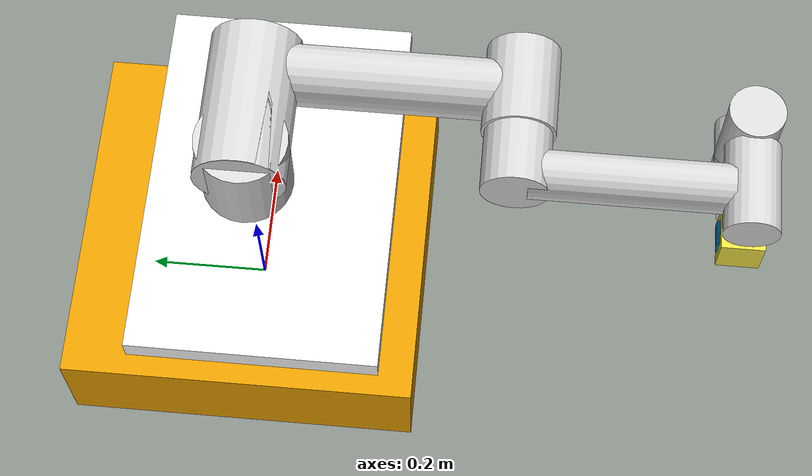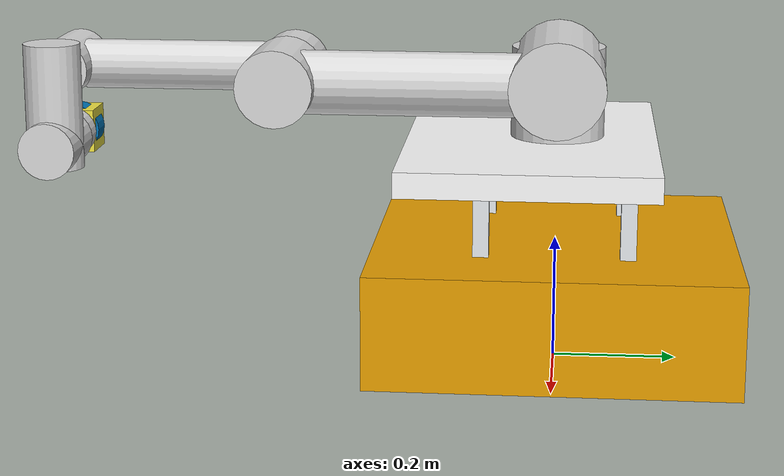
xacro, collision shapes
<?xml version="1.0" ?>
<robot name="tracer_jaka_zu5" xmlns:xacro="http://www.ros.org/wiki/xacro">

  <!-- xacro 参数：sim_mode 区分 Gazebo / 实机 -->
  <xacro:arg name="sim_mode" default="true"/>
  <xacro:arg name="prefix"   default=""/>

  <!-- 加载 ros2_control + gz_ros2_control 块 -->
  <xacro:include filename="$(find tracer_jaka_gazebo)/urdf/tracer_jaka.ros2_control.xacro"/>
  <xacro:include filename="$(find tracer_jaka_gazebo)/urdf/tracer_jaka.gazebo.xacro"/>

  <!-- ==================== 移动底盘部分 ==================== -->
  <link name="base_link">
    <visual>
      <origin rpy="1.57 0 0" xyz="0 0 0"/>
      <geometry>
        <mesh filename="package://tracer_jaka_gazebo/resources/tracer_description/meshes/tracer_base_link_no_wheel.dae"/>
      </geometry>
    </visual>
    <collision>
      <origin rpy="0 0 0" xyz="0 0 -0.02"/>
      <geometry>
        <box size="0.58 0.58 0.18"/>
      </geometry>
    </collision>
    <inertial>
      <!-- base_link 自身需要质量否则 Gazebo 会拒绝加载 -->
      <mass value="10.0"/>
      <origin xyz="0 0 0"/>
      <inertia ixx="0.01" ixy="0" ixz="0" iyy="0.01" iyz="0" izz="0.01"/>
    </inertial>
  </link>

  <link name="inertial_link">
    <inertial>
      <mass value="132.3898489950015"/>
      <origin xyz="0.015 0.0231316650320557 0"/>
      <inertia ixx="0.185196122711036" ixy="4.30144213829512E-08" ixz="5.81037523686401E-08"
               iyy="0.364893736238929"  iyz="-0.000386720198091934" izz="0.223868521722778"/>
    </inertial>
  </link>
  <joint name="inertial_joint" type="fixed">
    <origin rpy="0 0 0" xyz="0 0 0"/>
    <parent link="base_link"/>
    <child  link="inertial_link"/>
  </joint>

  <!-- =========== 驱动轮：CONTINUOUS（被 diff_drive_controller 控制） =========== -->
  <link name="right_wheel_link">
    <inertial>
      <mass value="6"/>
      <origin xyz="0 0 0"/>
      <inertia ixx="0.7171" ixy="0" ixz="0" iyy="0.1361" iyz="0" izz="0.7171"/>
    </inertial>
    <visual>
      <origin rpy="0 0 0" xyz="0 0 0"/>
      <geometry>
        <mesh filename="package://tracer_jaka_gazebo/resources/tracer_description/meshes/tracer_wheel.dae"/>
      </geometry>
    </visual>
    <collision>
      <origin rpy="1.5708 0 0" xyz="0 0 0"/>
      <geometry>
        <cylinder length="0.08" radius="0.065"/>
      </geometry>
    </collision>
  </link>
  <joint name="right_wheel" type="continuous">
    <parent link="base_link"/>
    <child  link="right_wheel_link"/>
    <origin rpy="0 0 0" xyz="0 -0.17 -0.082"/>
    <axis  xyz="0 1 0"/>
    <dynamics damping="0.05" friction="0.1"/>
    <limit effort="50" velocity="10"/>
  </joint>

  <link name="left_wheel_link">
    <inertial>
      <mass value="6"/>
      <origin xyz="0 0 0"/>
      <inertia ixx="0.7171" ixy="0" ixz="0" iyy="0.1361" iyz="0" izz="0.7171"/>
    </inertial>
    <visual>
      <origin rpy="0 0 0" xyz="0 0 0"/>
      <geometry>
        <mesh filename="package://tracer_jaka_gazebo/resources/tracer_description/meshes/tracer_wheel.dae"/>
      </geometry>
    </visual>
    <collision>
      <origin rpy="1.5708 0 0" xyz="0 0 0"/>
      <geometry>
        <cylinder length="0.08" radius="0.065"/>
      </geometry>
    </collision>
  </link>
  <joint name="left_wheel" type="continuous">
    <parent link="base_link"/>
    <child  link="left_wheel_link"/>
    <origin rpy="0 0 0" xyz="0 0.17 -0.082"/>
    <axis  xyz="0 1 0"/>
    <dynamics damping="0.05" friction="0.1"/>
    <limit effort="50" velocity="10"/>
  </joint>

  <!-- =========== 万向轮支架 + 轮：保持 fixed，靠低摩擦让小球滑动 =========== -->
  <xacro:macro name="castor" params="name xyz">
    <link name="${name}_castor_link">
      <inertial>
        <mass value="0.5"/>
        <origin xyz="0 0 0"/>
        <inertia ixx="1e-3" ixy="0" ixz="0" iyy="1e-3" iyz="0" izz="1e-3"/>
      </inertial>
      <visual>
        <geometry>
          <mesh filename="package://tracer_jaka_gazebo/resources/tracer_description/meshes/castor_joint.dae"/>
        </geometry>
      </visual>
      <collision>
        <origin rpy="0 0 0" xyz="0 0 0"/>
        <geometry><cylinder length="0.04" radius="0.035"/></geometry>
      </collision>
    </link>
    <joint name="${name}_castor_wheel" type="fixed">
      <origin rpy="-1.57 0 0" xyz="${xyz}"/>
      <parent link="base_link"/>
      <child  link="${name}_castor_link"/>
    </joint>

    <link name="${name}_wheel_link">
      <inertial>
        <mass value="0.3"/>
        <origin xyz="0 0 0"/>
        <inertia ixx="1e-4" ixy="0" ixz="0" iyy="1e-4" iyz="0" izz="1e-4"/>
      </inertial>
      <visual>
        <geometry>
          <mesh filename="package://tracer_jaka_gazebo/resources/tracer_description/meshes/castor.dae"/>
        </geometry>
      </visual>
      <collision>
        <origin rpy="0 0 0" xyz="0 0 0"/>
        <geometry><sphere radius="0.04"/></geometry>
      </collision>
    </link>
    <joint name="${name}_wheel" type="fixed">
      <parent link="${name}_castor_link"/>
      <child  link="${name}_wheel_link"/>
      <origin rpy="0 0 0" xyz="-0.0218084 0.067 0"/>
    </joint>
  </xacro:macro>

  <xacro:castor name="fl" xyz="0.18955  0.17 -0.0380886"/>
  <xacro:castor name="fr" xyz="0.18955 -0.17 -0.0380886"/>
  <xacro:castor name="rr" xyz="-0.18955 -0.17 -0.0380886"/>
  <xacro:castor name="rl" xyz="-0.18955  0.17 -0.0380886"/>

  <!-- ==================== 底盘上方铝型材（4 根） ==================== -->
  <xacro:macro name="aluminium_pillar" params="name xyz">
    <link name="${name}">
      <inertial>
        <origin rpy="0 0 0" xyz="0 0 0.1"/>
        <mass value="0.252739239169835"/>
        <inertia ixx="0.000880444836748547" ixy="0" ixz="0"
                 iyy="0.000884007661098085" iyz="0" izz="7.95242367143988E-05"/>
      </inertial>
      <visual>
        <origin rpy="0 0 0" xyz="0 0 0"/>
        <geometry>
          <mesh filename="package://tracer_jaka_gazebo/resources/aluminium/meshes/aluminium_base_link.STL"/>
        </geometry>
        <material name="white"><color rgba="0.898 0.917 0.929 1"/></material>
      </visual>
      <collision>
        <origin rpy="0 0 0" xyz="0 0 0.1"/>
        <geometry><box size="0.025 0.025 0.20"/></geometry>
      </collision>
    </link>
    <joint name="joint_${name}" type="fixed">
      <origin rpy="0 0 1.57" xyz="${xyz}"/>
      <parent link="base_link"/>
      <child  link="${name}"/>
    </joint>
  </xacro:macro>
  <xacro:aluminium_pillar name="aluminium_base_link"   xyz="-0.142  0.115 0.016"/>
  <xacro:aluminium_pillar name="aluminium_2_base_link" xyz="-0.142 -0.115 0.016"/>
  <xacro:aluminium_pillar name="aluminium_3_base_link" xyz=" 0.145  0.115 0.016"/>
  <xacro:aluminium_pillar name="aluminium_4_base_link" xyz=" 0.145 -0.115 0.016"/>

  <!-- 机械臂安装平台 -->
  <link name="urbase_base_link">
    <inertial>
      <origin rpy="0 0 0" xyz="-0.0821499280748119 0 -0.00250008544254768"/>
      <mass value="0.965960559010444"/>
      <inertia ixx="0.0122165277186615" ixy="0" ixz="0"
               iyy="0.0276040033352521" iyz="0" izz="0.0398165064505868"/>
    </inertial>
    <visual>
      <origin rpy="0 0 0" xyz="0 0 0"/>
      <geometry>
        <mesh filename="package://tracer_jaka_gazebo/resources/second_base/meshes/urbase_base_link.STL"/>
      </geometry>
      <material name="plate_white"><color rgba="1 1 1 1"/></material>
    </visual>
    <collision>
      <origin rpy="0 0 0" xyz="0.0 0.04 -0.0025"/>
      <geometry><box size="0.6 0.4 0.04"/></geometry>
    </collision>
  </link>
  <joint name="tracer_base" type="fixed">
    <origin rpy="0 0 3.14" xyz="0 0 0.218"/>
    <parent link="base_link"/>
    <child  link="urbase_base_link"/>
  </joint>

  <link name="base_footprint"/>
  <joint name="base_footprint_to_base_link" type="fixed">
    <parent link="base_footprint"/>
    <child  link="base_link"/>
    <origin rpy="0 0 0" xyz="0 0 0.136"/>
  </joint>

  <!-- ==================== Jaka ZU5 机械臂 ==================== -->
  <link name="jaka_base_link"/>
  <joint name="base_to_jaka" type="fixed">
    <parent link="base_link"/>
    <child  link="jaka_base_link"/>
    <origin rpy="0 0 -1.57" xyz="0 0 0.221"/>
  </joint>

  <link name="Link_0">
    <inertial>
      <origin rpy="0 0 0" xyz="0.00096371 0 0.019555"/>
      <mass value="1.0392"/>
      <inertia ixx="0.0048763" ixy="0" ixz="0" iyy="0.0068003" iyz="0" izz="0.010618"/>
    </inertial>
    <visual>
      <geometry>
        <mesh filename="package://tracer_jaka_gazebo/resources/jaka_zu5_meshes/Link_0.STL"/>
      </geometry>
      <material name="silver"><color rgba="0.84706 0.84706 0.84706 1"/></material>
    </visual>
    <collision>
      <origin rpy="0 0 0" xyz="0 0 0.06"/>
      <geometry><cylinder length="0.2" radius="0.075"/></geometry>
    </collision>
  </link>
  <joint name="fixed_1" type="fixed">
    <origin rpy="0 0 0" xyz="0 0 0"/>
    <parent link="jaka_base_link"/>
    <child  link="Link_0"/>
  </joint>

  <link name="Link_1">
    <inertial>
      <origin rpy="0 0 0" xyz="0 0.0033226 -0.001509"/>
      <mass value="1.5135"/>
      <inertia ixx="0.044302" ixy="0" ixz="0" iyy="0.043091" iyz="0" izz="0.030523"/>
    </inertial>
    <visual>
      <geometry>
        <mesh filename="package://tracer_jaka_gazebo/resources/jaka_zu5_meshes/Link_1.STL"/>
      </geometry>
      <material name="silver"/>
    </visual>
    <collision>
      <origin rpy="1.5708 0 0" xyz="0 0.072 0"/>
      <geometry><cylinder length="0.25" radius="0.075"/></geometry>
    </collision>
  </link>

  <link name="Link_2">
    <inertial>
      <origin rpy="0 0 0" xyz="0.215 0 -0.14315"/>
      <mass value="1.5847"/>
      <inertia ixx="0.10377" ixy="0" ixz="0" iyy="1.5964" iyz="0" izz="1.5689"/>
    </inertial>
    <visual>
      <origin rpy="0 0 0" xyz="0 0 0.14315"/>
      <geometry>
        <mesh filename="package://tracer_jaka_gazebo/resources/jaka_zu5_meshes/Link_2.STL"/>
      </geometry>
      <material name="silver"/>
    </visual>
    <collision>
      <origin rpy="0 0 0" xyz="0 0 0.072"/>
      <geometry><cylinder length="0.25" radius="0.075"/></geometry>
    </collision>
    <collision>
      <origin rpy="0 1.5708 0" xyz="0.215 0 0.0"/>
      <geometry><cylinder length="0.40" radius="0.05"/></geometry>
    </collision>
    <collision>
      <origin rpy="0 0 0" xyz="0.43 0 0"/>
      <geometry><cylinder length="0.15" radius="0.06"/></geometry>
    </collision>
  </link>

  <link name="Link_3">
    <inertial>
      <origin rpy="0 0 0" xyz="0.19087 0 -0.010587"/>
      <mass value="1.8069"/>
      <inertia ixx="0.022066" ixy="0" ixz="0" iyy="0.41632" iyz="0" izz="0.41071"/>
    </inertial>
    <visual>
      <geometry>
        <mesh filename="package://tracer_jaka_gazebo/resources/jaka_zu5_meshes/Link_3.STL"/>
      </geometry>
      <material name="silver"/>
    </visual>
    <collision>
      <origin rpy="0 0 0" xyz="0 0 -0.04"/>
      <geometry><cylinder length="0.15" radius="0.055"/></geometry>
    </collision>
    <collision>
      <origin rpy="0 1.5708 0" xyz="0.18 0 0.0"/>
      <geometry><cylinder length="0.32" radius="0.04"/></geometry>
    </collision>
    <!-- 修正：原 demo.urdf 此处 xyz 缺第三位 -->
    <collision>
      <origin rpy="0 0 0" xyz="0.3685 0 0"/>
      <geometry><cylinder length="0.15" radius="0.045"/></geometry>
    </collision>
  </link>

  <link name="Link_4">
    <inertial>
      <origin rpy="0 0 0" xyz="0 -0.0058004 0.0026717"/>
      <mass value="1.5525"/>
      <inertia ixx="0.0092564" ixy="0" ixz="0" iyy="0.0052251" iyz="0" izz="0.0089683"/>
    </inertial>
    <visual>
      <geometry>
        <mesh filename="package://tracer_jaka_gazebo/resources/jaka_zu5_meshes/Link_4.STL"/>
      </geometry>
      <material name="silver"/>
    </visual>
    <collision>
      <origin rpy="1.5708 0 0" xyz="0 -0.05 0"/>
      <geometry><cylinder length="0.20" radius="0.045"/></geometry>
    </collision>
  </link>

  <link name="Link_5">
    <inertial>
      <origin rpy="0 0 0" xyz="0 -0.0028889 -0.0023424"/>
      <mass value="1.3339"/>
      <inertia ixx="0.012993" ixy="0" ixz="0" iyy="0.0058454" iyz="0" izz="0.0127"/>
    </inertial>
    <visual>
      <geometry>
        <mesh filename="package://tracer_jaka_gazebo/resources/jaka_zu5_meshes/Link_5.STL"/>
      </geometry>
      <material name="silver"/>
    </visual>
    <collision>
      <origin rpy="1.5708 0 0" xyz="0 0 0"/>
      <geometry><cylinder length="0.12" radius="0.045"/></geometry>
    </collision>
  </link>

  <link name="Link_6">
    <inertial>
      <origin rpy="0 0 0" xyz="0 0 -0.021245"/>
      <mass value="1.4169"/>
      <inertia ixx="0.00071853" ixy="0" ixz="0" iyy="0.00072375" iyz="0" izz="0.0011337"/>
    </inertial>
    <visual>
      <geometry>
        <mesh filename="package://tracer_jaka_gazebo/resources/jaka_zu5_meshes/Link_6.STL"/>
      </geometry>
      <material name="silver"/>
    </visual>
    <collision>
      <origin rpy="0 0 0" xyz="0 0 -0.025"/>
      <geometry><cylinder length="0.05" radius="0.04"/></geometry>
    </collision>
  </link>

  <link name="Link_6_45"/>
  <joint name="fixed_2" type="fixed">
    <origin rpy="0 0 -0.7854" xyz="0 0 0"/>
    <parent link="Link_6"/>
    <child  link="Link_6_45"/>
  </joint>

  <!-- 6 个回转关节 -->
  <joint name="joint_1" type="revolute">
    <origin rpy="0 0 0" xyz="0 0 0.12015"/>
    <parent link="Link_0"/><child link="Link_1"/>
    <axis xyz="0 0 1"/>
    <limit effort="2000" lower="-6.28" upper="6.28" velocity="3.14"/>
    <dynamics damping="1.0" friction="0.5"/>
  </joint>
  <joint name="joint_2" type="revolute">
    <origin rpy="1.5708 0 0" xyz="0 0.14315 0"/>
    <parent link="Link_1"/><child link="Link_2"/>
    <axis xyz="0 0 1"/>
    <limit effort="5000" lower="-1.48" upper="4.62" velocity="3.14"/>
    <dynamics damping="1.0" friction="0.5"/>
  </joint>
  <joint name="joint_3" type="revolute">
    <origin rpy="0 0 0" xyz="0.43 0 0.14315"/>
    <parent link="Link_2"/><child link="Link_3"/>
    <axis xyz="0 0 1"/>
    <limit effort="5000" lower="-3.05" upper="3.05" velocity="3.14"/>
    <dynamics damping="1.0" friction="0.5"/>
  </joint>
  <joint name="joint_4" type="revolute">
    <origin rpy="0 0 0" xyz="0.3685 -1.185E-05 -0.114"/>
    <parent link="Link_3"/><child link="Link_4"/>
    <axis xyz="0 0 1"/>
    <limit effort="2000" lower="-1.48" upper="4.62" velocity="3.14"/>
    <dynamics damping="0.5" friction="0.3"/>
  </joint>
  <joint name="joint_5" type="revolute">
    <origin rpy="1.5708 0 0" xyz="0 -0.1135 0"/>
    <parent link="Link_4"/><child link="Link_5"/>
    <axis xyz="0 0 1"/>
    <limit effort="3000" lower="-6.28" upper="6.28" velocity="3.14"/>
    <dynamics damping="0.5" friction="0.3"/>
  </joint>
  <joint name="joint_6" type="revolute">
    <origin rpy="-1.5708 0 0" xyz="0 0.107 0"/>
    <parent link="Link_5"/><child link="Link_6"/>
    <axis xyz="0 0 1"/>
    <limit effort="1000" lower="-6.28" upper="6.28" velocity="3.14"/>
    <dynamics damping="0.5" friction="0.3"/>
  </joint>

  <!-- ==================== 视觉相机 + 末端 ==================== -->
  <link name="jk_se_vi_200_link">
    <inertial>
      <origin rpy="0 0 0" xyz="0 0 0.00519325476237179"/>
      <mass value="0.113976498368271"/>
      <inertia ixx="5.64946593588005E-05" ixy="0" ixz="0"
               iyy="5.49156738067512E-05" iyz="0" izz="8.64640542438198E-05"/>
    </inertial>
    <visual>
      <origin rpy="0 0 0" xyz="0 0 -0.0315"/>
      <geometry>
        <mesh filename="package://tracer_jaka_gazebo/resources/jk_se_vi_200/meshes/jk_se_vi_200_link.stl" scale="0.001 0.001 0.001"/>
      </geometry>
    </visual>
    <collision>
      <origin rpy="0 0 0" xyz="0 0 0.005"/>
      <geometry><box size="0.07 0.07 0.07"/></geometry>
    </collision>
  </link>
  <joint name="jk_se_vi_200_joint" type="fixed">
    <origin rpy="0 0 0.785398" xyz="0 0 0.0315"/>
    <parent link="Link_6_45"/>
    <child  link="jk_se_vi_200_link"/>
  </joint>

  <link name="tool0_and_camera_link">
    <inertial>
      <origin rpy="0 0 0" xyz="0 0 0"/>
      <mass value="0.7"/>
      <inertia ixx="0.001" ixy="0" ixz="0"
              iyy="0.001" iyz="0"
              izz="0.001"/>
    </inertial>
    <visual>
      <origin rpy="0 0 0" xyz="0 0 0"/>
      <geometry>
        <mesh filename="package://tracer_jaka_gazebo/resources/tool0.STL" scale="0.001 0.001 0.001"/>
      </geometry>
    </visual>
    <collision>
      <origin rpy="0 0 0" xyz="0 0 0.005"/>
      <geometry><cylinder length="0.04" radius="0.04"/></geometry>
    </collision>
  </link>
  <joint name="tool0_and_camera_link_joint" type="fixed">
    <origin rpy="0 0 3.14" xyz="0 0 0.0"/>
    <parent link="jk_se_vi_200_link"/>
    <child  link="tool0_and_camera_link"/>
  </joint>

  <link name="d435i_link">
    <visual>
      <origin rpy="0 0 0" xyz="0 0 0"/>
      <geometry>
        <mesh filename="package://tracer_jaka_gazebo/resources/realsense_d435.stl" scale="0.001 0.001 0.001"/>
      </geometry>
    </visual>

  </link>
  <joint name="d435i_joint" type="fixed">
    <origin rpy="0 0 3.14" xyz="0 -0.085 0.03"/>
    <parent link="tool0_and_camera_link"/>
    <child  link="d435i_link"/>
  </joint>

  <!-- ==================== ros2_control + Gazebo 插件 ==================== -->
  <xacro:tracer_jaka_ros2_control sim_mode="$(arg sim_mode)"/>
  <xacro:tracer_jaka_gazebo/>

</robot>
